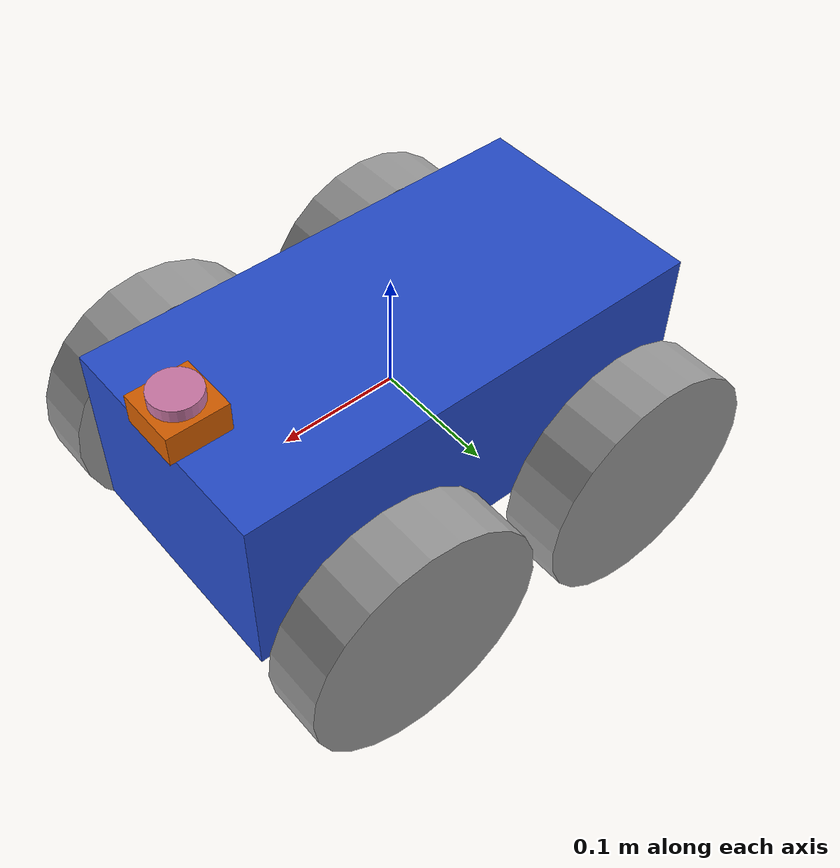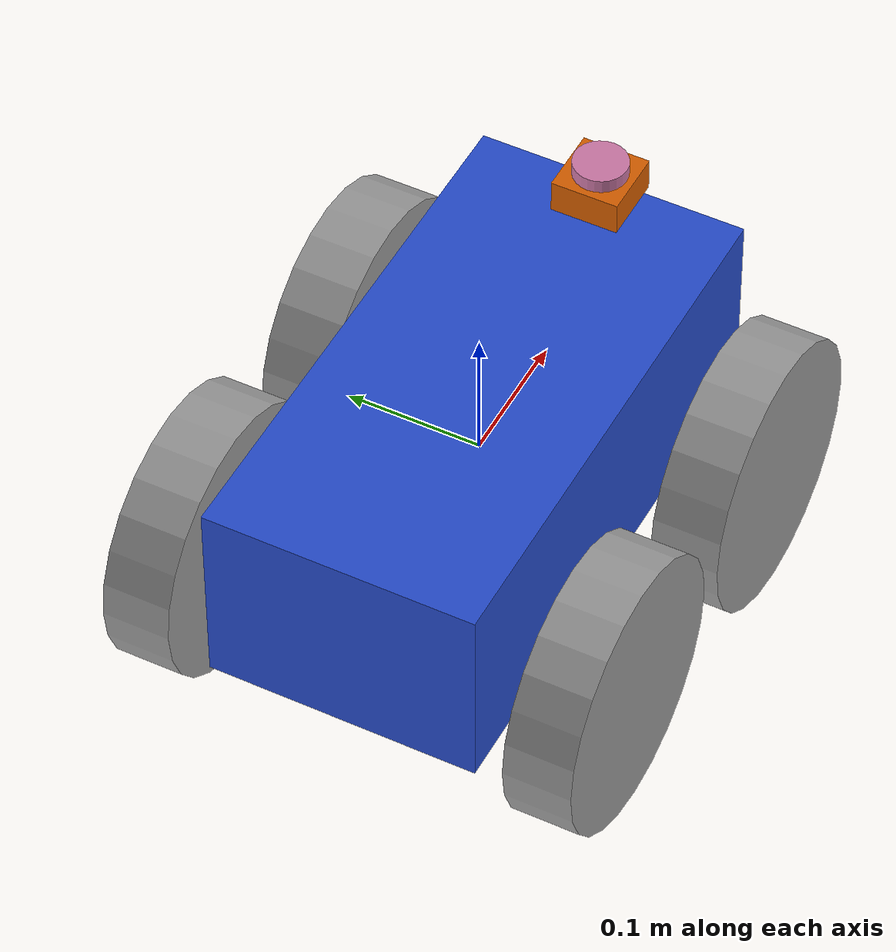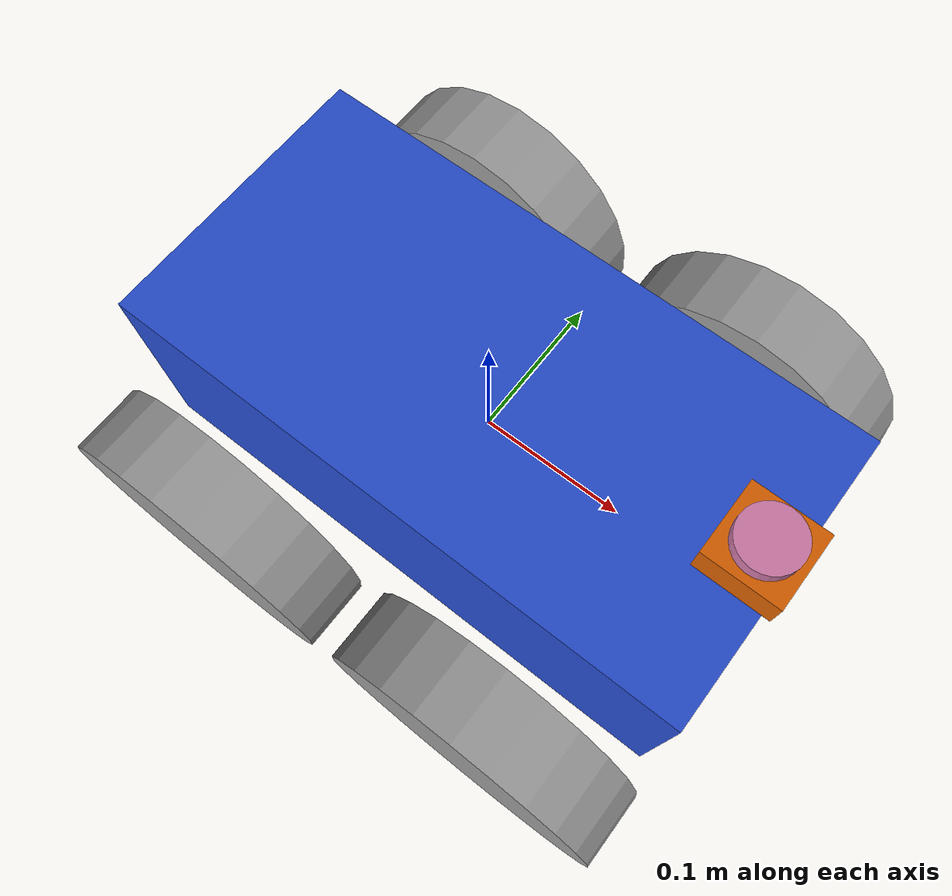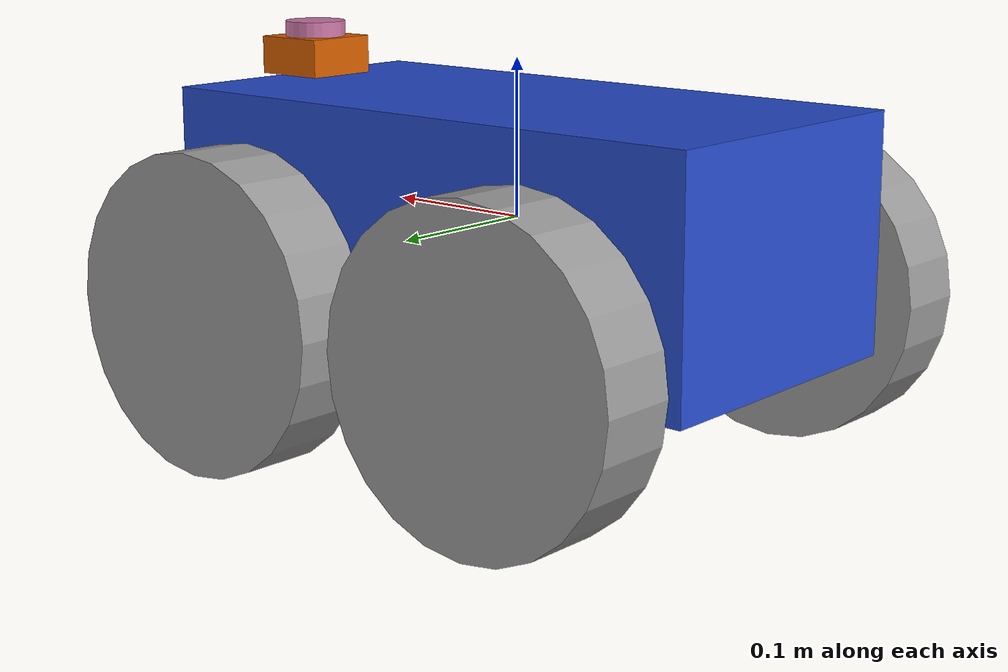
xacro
<?xml version='1.0'?>

<robot name="transportation" xmlns:xacro="http://www.ros.org/wiki/xacro">

<!--http://gazebosim.org/tutorials?tut=guided_i1 for lidar-->
<!--http://gazebosim.org/tutorials?tut=ros_gzplugins for sensors-->

  <xacro:include filename="$(find lunabotics2020)/models/transportation/transportation.gazebo" />
  <xacro:include filename="$(find lunabotics2020)/models/transportation/materials.xacro" />
  <xacro:include filename="$(find lunabotics2020)/models/transportation/macros.xacro" />

  <!--Macros-->
  <xacro:property name="wheel_height" value="-0.05"/>
  <xacro:property name="lidar_base_size" value="0.05 0.05 0.025"/>
  <xacro:property name="wheel_inertia_ixx" value="0.025"/>
  <xacro:property name="wheel_inertia_iyy" value="0.025"/>
  <xacro:property name="wheel_inertia_izz" value="0.025"/>

  <!--End Macros-->

  <link name='chassis'>
    <pose>0 0 0.1 0 0 0</pose>

    <inertial>
      <mass value="20.0"/>
      <origin xyz="0.0 0.0 0.0" rpy="0.0 0.0 0.0"/>
      <inertia
          ixx="0.4" ixy="0" ixz="0"
          iyy="0.2" iyz="0"
          izz="0.15"
      />
    </inertial>
    <collision name='collision'>
      <geometry>
        <box size=".4 .2 .15"/>
      </geometry>
    </collision>
    <visual name='chassis_visual'>
      <origin xyz="0 0 0" rpy="0 0 0"/>
      <geometry>
        <box size=".4 .2 .15"/>
      </geometry>
    </visual>
  </link>

  <link name="left_wheel">
    <collision name="collision">
      <origin xyz="0 0 0" rpy="0 1.5707 1.5707"/>
      <geometry>
        <cylinder radius="0.1" length="0.05"/>
      </geometry>
    </collision>
    <visual name="left_wheel_visual">
      <origin xyz="0 0 0" rpy="0 1.5707 1.5707"/>
      <geometry>
        <cylinder radius="0.1" length="0.05"/>
      </geometry>
    </visual>
    <inertial>
      <origin xyz="0 0 0" rpy="0 1.5707 1.5707"/>
      <mass value="5"/>
      <cylinder_inertia m="5" r="0.1" h="0.05"/>
      <inertia
        ixx="${wheel_inertia_ixx}" ixy="0.0" ixz="0.0"
        iyy="${wheel_inertia_iyy}" iyz="0.0"
        izz="${wheel_inertia_izz}"/>
    </inertial>
  </link>

    <link name="left_rear_wheel">
    <collision name="collision">
      <origin xyz="0 0 0" rpy="0 1.5707 1.5707"/>
      <geometry>
        <cylinder radius="0.1" length="0.05"/>
      </geometry>
    </collision>
    <visual name="left_rear_wheel_visual">
      <origin xyz="0 0 0" rpy="0 1.5707 1.5707"/>
      <geometry>
        <cylinder radius="0.1" length="0.05"/>
      </geometry>
    </visual>
    <inertial>
      <origin xyz="0 0 0" rpy="0 1.5707 1.5707"/>
      <mass value="5"/>
      <cylinder_inertia m="5" r="0.1" h="0.05"/>
      <inertia
        ixx="${wheel_inertia_ixx}" ixy="0.0" ixz="0.0"
        iyy="${wheel_inertia_iyy}" iyz="0.0"
        izz="${wheel_inertia_izz}"/>
    </inertial>
  </link>

  <link name="right_wheel">
    <collision name="collision">
      <origin xyz="0 0 0" rpy="0 1.5707 1.5707"/>
      <geometry>
        <cylinder radius="0.1" length="0.05"/>
      </geometry>
    </collision>
    <visual name="right_wheel_visual">
      <origin xyz="0 0 0" rpy="0 1.5707 1.5707"/>
      <geometry>
        <cylinder radius="0.1" length="0.05"/>
      </geometry>
    </visual>
    <inertial>
      <origin xyz="0 0 0" rpy="0 1.5707 1.5707"/>
      <mass value="5"/>
      <cylinder_inertia m="5" r="0.1" h="0.05"/>
      <inertia
        ixx="${wheel_inertia_ixx}" ixy="0.0" ixz="0.0"
        iyy="${wheel_inertia_iyy}" iyz="0.0"
        izz="${wheel_inertia_izz}"/>
    </inertial>
  </link>

    <link name="right_rear_wheel">
    <collision name="collision">
      <origin xyz="0 0 0" rpy="0 1.5707 1.5707"/>
      <geometry>
        <cylinder radius="0.1" length="0.05"/>
      </geometry>
    </collision>
    <visual name="right_rear_wheel_visual">
      <origin xyz="0 0 0" rpy="0 1.5707 1.5707"/>
      <geometry>
        <cylinder radius="0.1" length="0.05"/>
      </geometry>
    </visual>
    <inertial>
      <origin xyz="0 0 0" rpy="0 1.5707 1.5707"/>
      <mass value="5"/>
      <cylinder_inertia m="5" r="0.1" h="0.05"/>
      <inertia
        ixx="${wheel_inertia_ixx}" ixy="0.0" ixz="0.0"
        iyy="${wheel_inertia_iyy}" iyz="0.0"
        izz="${wheel_inertia_izz}"/>
    </inertial>
  </link>

  <joint type="continuous" name="left_wheel_hinge">
    <origin  xyz="0.11 0.15 ${wheel_height}" rpy="0 0 0"/>
    <child link="left_wheel"/>
    <parent link="chassis"/>
    <axis xyz="0 1 0" rpy="0 0 0"/>
    <limit effort="100" velocity="100"/>
    <joint_properties damping="0.0" friction="0.0"/>
  </joint>

  <joint type="continuous" name="left_rear_wheel_hinge">
    <origin xyz="-0.11 0.15 ${wheel_height}" rpy="0 0 0"/>
    <child link="left_rear_wheel"/>
    <parent link="chassis"/>
    <axis xyz="0 1 0" rpy="0 0 0"/>
    <limit effort="100" velocity="100"/>
    <joint_properties damping="0.0" friction="0.0"/>
  </joint>

  <joint type="continuous" name="right_wheel_hinge">
    <origin xyz="0.11 -0.15 ${wheel_height}" rpy="0 0 0"/>
    <child link="right_wheel"/>
    <parent link="chassis"/>
    <axis xyz="0 1 0" rpy="0 0 0"/>
    <limit effort="100" velocity="100"/>
    <joint_properties damping="0.0" friction="0.0"/>
  </joint>

  <joint type="continuous" name="right_rear_wheel_hinge">
    <origin xyz="-0.11 -0.15 ${wheel_height}" rpy="0 0 0"/>
    <child link="right_rear_wheel"/>
    <parent link="chassis"/>
    <axis xyz="0 1 0" rpy="0 0 0"/>
    <limit effort="100" velocity="100"/>
    <joint_properties damping="0.0" friction="0.0"/>
  </joint>

  <!--====  Lidar  ========================================-->

  <link name='lidar_base'>
    <pose>0 0 0.1 0 0 0</pose>

    <inertial>
      <mass value="0.01"/>
      <origin xyz="0.0 0.0 0.1" rpy="0.0 0.0 0.0"/>
      <inertia
          ixx="0.05" ixy="0" ixz="0"
          iyy="0.05" iyz="0"
          izz="0.025"
      />
    </inertial>
    <collision name='collision'>
      <geometry>
        <box size="${lidar_base_size}"/>
      </geometry>
    </collision>
    <visual name='lidar_base_pivot_visual'>
      <origin xyz="0 0 0" rpy="0 0 0"/>
      <geometry>
        <box size="${lidar_base_size}"/>
      </geometry>
    </visual>
  </link>

  <link name="lidar">
    <collision name="collision">
      <origin xyz="0 0 0" rpy="0 0 0"/>
      <geometry>
        <cylinder radius="0.02" length="0.02"/>
      </geometry>
    </collision>
    <visual name="lidar_visual">
      <origin xyz="0 0 0" rpy="0 0 0"/>
      <geometry>
        <cylinder radius="0.02" length="0.02"/>
      </geometry>
    </visual>
    <inertial>
      <origin xyz="0 0 0" rpy="0 0 0"/>
      <mass value="0.01"/>
      <cylinder_inertia m="0.5" r="0.1" h="0.05"/>
      <inertia
        ixx="0.02" ixy="0.0" ixz="0.0"
        iyy="0.02" iyz="0.0"
        izz="0.02"/>
    </inertial>
  </link>

  <joint type="fixed" name="lidar_base_fixed">
    <origin xyz="0.18 0 0.0895" rpy="0 0 0"/>
    <child link="lidar_base"/>
    <parent link="chassis"/>
  </joint>

  <joint type="fixed" name="lidar_fixed">
    <origin xyz="0 0 0.0128" rpy="0 0 0"/>
    <child link="lidar"/>
    <parent link="lidar_base"/>
  </joint>

</robot>
